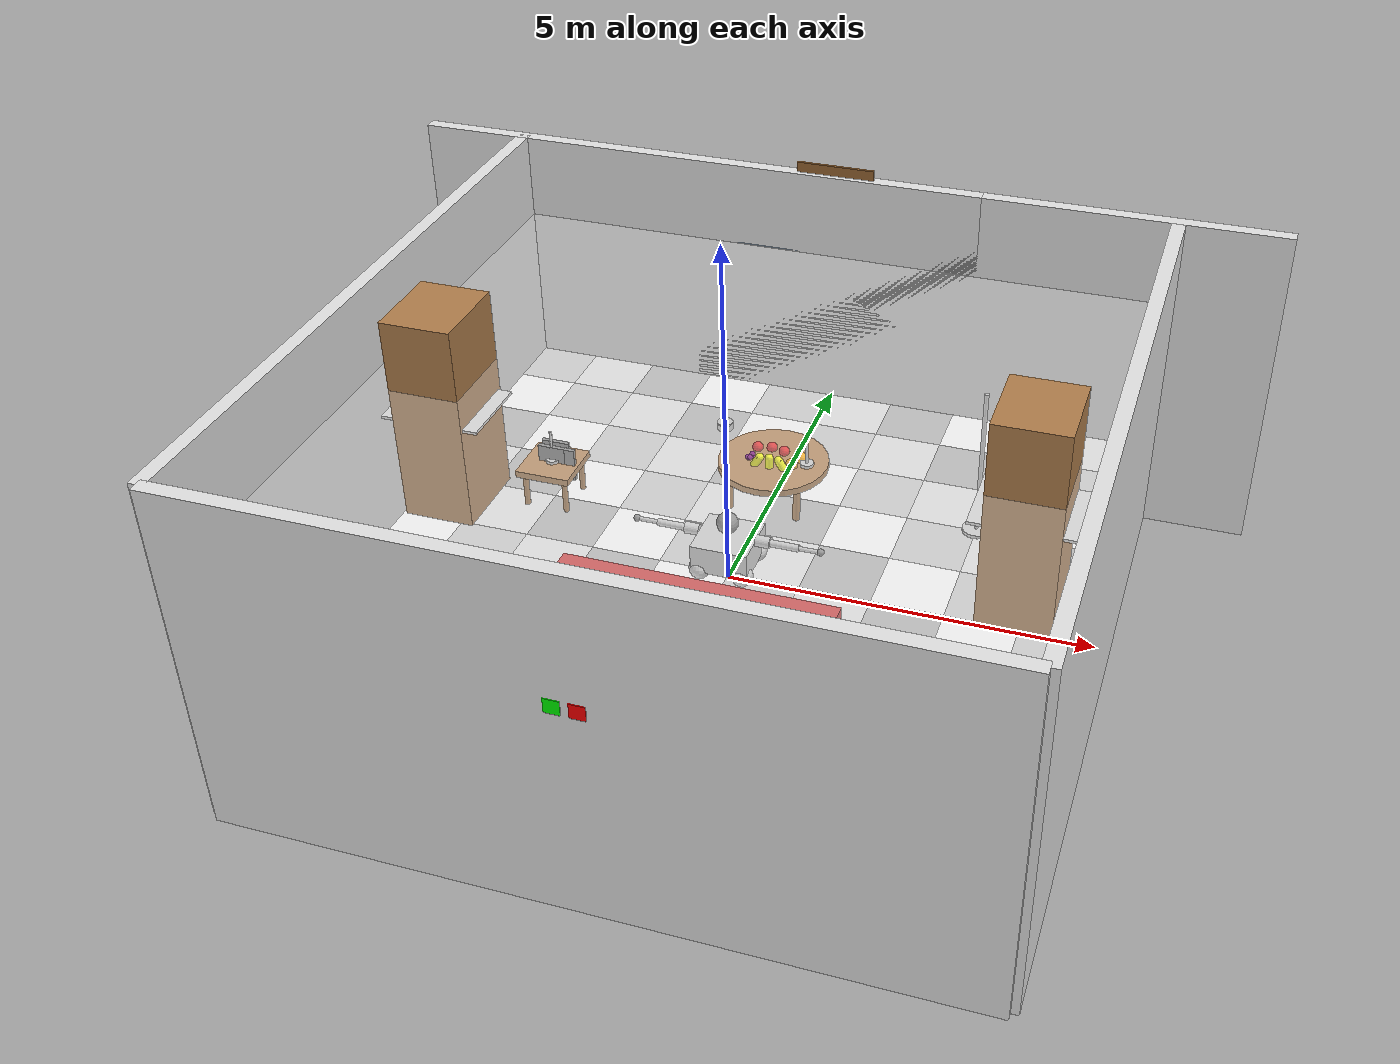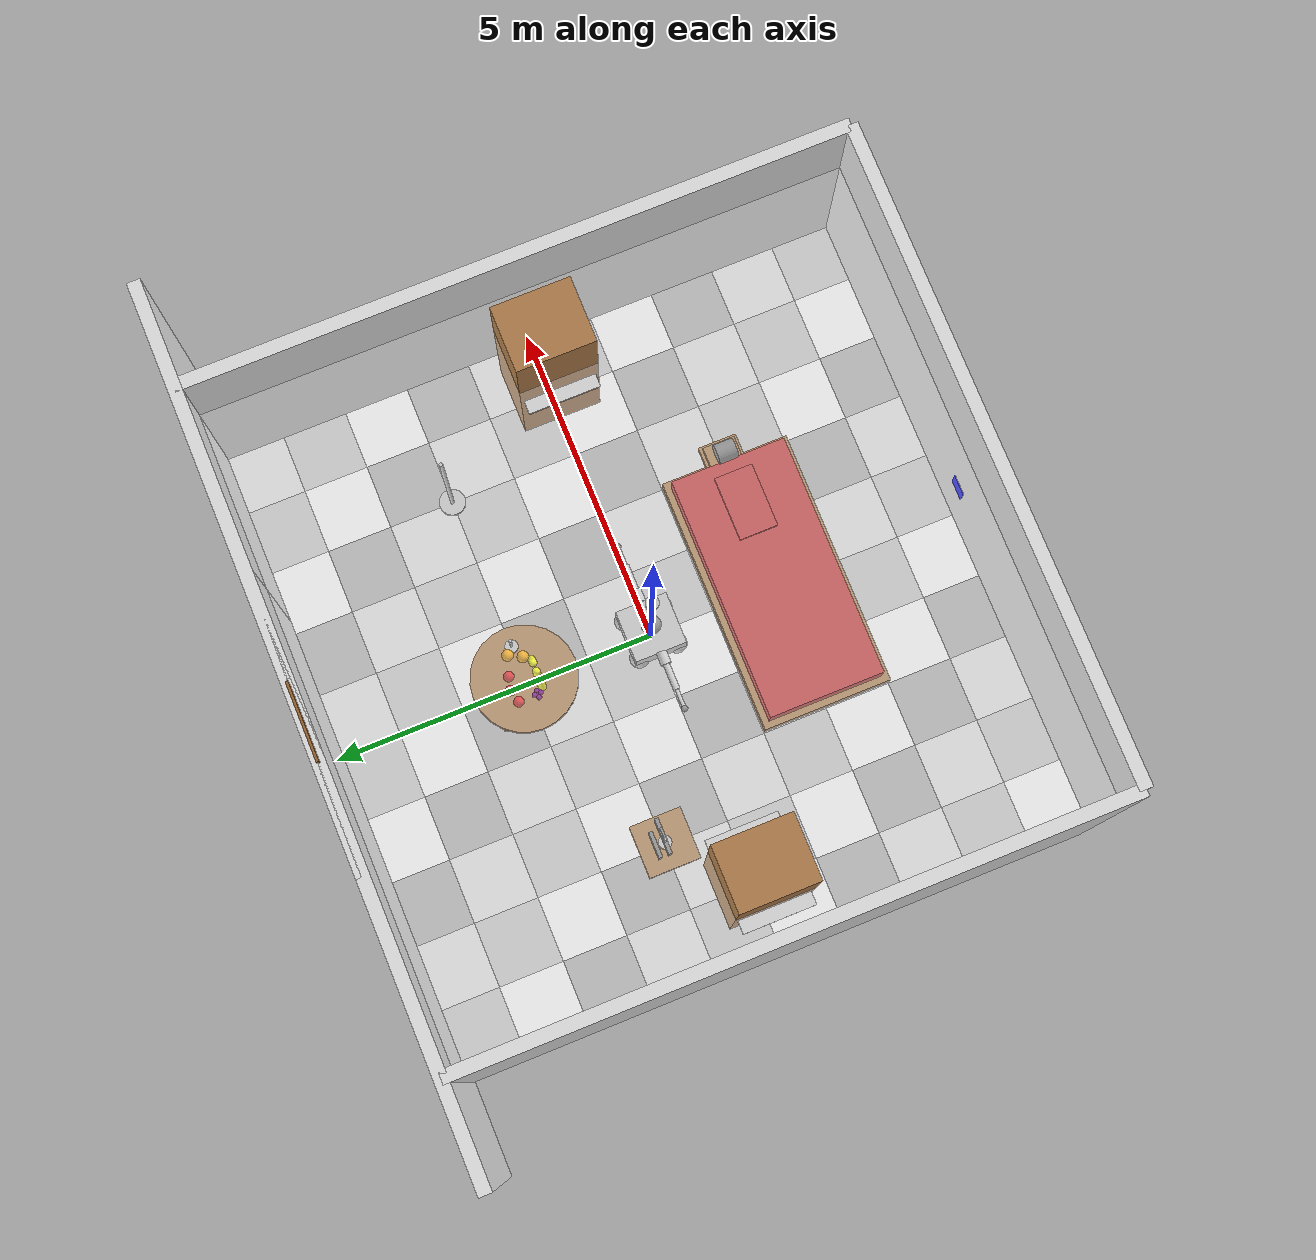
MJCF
<mujoco model="bedroom">
  <compiler angle="degree" inertiafromgeom="true"/>
  <option integrator="RK4" timestep="0.01"/>

  <asset>
    <material name="wall" rgba="0.9 0.9 0.9 1"/>
    <material name="floor_tile1" rgba="1 1 1 1"/> <!-- 白色 -->
    <material name="floor_tile2" rgba="0.8 0.8 0.8 1"/> <!-- 浅灰色 -->
    <material name="floor_tile3" rgba="0.9 0.9 0.9 1"/> <!-- 中灰色 -->
    <material name="floor_tile4" rgba="0.7 0.7 0.7 1"/> <!-- 深灰色 -->
    <material name="ceiling" rgba="0.95 0.95 0.95 1"/>
    <material name="wood" rgba="0.7 0.5 0.3 1"/>
    <material name="metal" rgba="0.8 0.8 0.8 1"/>
    <material name="fabric" rgba="0.8 0.2 0.2 1"/>
    <material name="plastic" rgba="0.5 0.5 0.5 1"/>
    <material name="window" rgba="0.3 0.6 0.9 0.3"/>
    <material name="light" rgba="1 1 0.9 0.8"/>
    <material name="wardrobe_door" rgba="0.85 0.85 0.85 1"/>
    <material name="wardrobe_inner" rgba="0.9 0.85 0.8 1"/>
    <material name="apple" rgba="0.9 0.1 0.1 1"/>
    <material name="banana" rgba="1 1 0 1"/>
    <material name="orange" rgba="1 0.65 0 1"/>
    <material name="grape" rgba="0.5 0 0.5 1"/>
    <material name="frame" rgba="0.6 0.4 0.2 1"/>
    <material name="picture" rgba="0.2 0.4 0.8 0.9"/>
    <material name="picture_box1" rgba="1 0 0 1"/>
    <material name="picture_box2" rgba="0 1 0 1"/>
    <material name="picture_box3" rgba="0 0 1 1"/>
    <material name="door" rgba="0.6 0.4 0.2 1"/>
  </asset>

  <worldbody>
    <!-- 相机视角 -->
    <camera name="main_camera" pos="5 5 3" fovy="60"/>

    <!-- 光照设置 -->
    <!-- 方向光（模拟太阳光） -->
    <light diffuse="1 1 1" pos="5 -5 5" dir="-1 1 -1"/>
    <!-- 点光源1（天花板灯） -->
    <light diffuse="1 1 0.9" pos="0 0 2.3"/>
    <!-- 点光源2（落地灯） -->
    <light diffuse="1 1 0.9" pos="3 2 1.9"/>
    <!-- 点光源3（小桌子台灯） -->
    <light diffuse="1 1 0.9" pos="-3 1 1.05"/>
    <!-- 点光源4（餐桌台灯） -->
    <light diffuse="1 1 0.9" pos="0.5 2 1.05"/>

    <!-- 地板：拼色方块地板砖 -->
    <!-- 创建10x10的地板砖网格，使用四种颜色的拼色图案 -->
    <!-- 第一行 -->
    <geom name="tile_0_0" type="box" size="0.5 0.5 0.05" pos="-4.5 -4.5 0" material="floor_tile1"/>
    <geom name="tile_1_0" type="box" size="0.5 0.5 0.05" pos="-3.5 -4.5 0" material="floor_tile2"/>
    <geom name="tile_2_0" type="box" size="0.5 0.5 0.05" pos="-2.5 -4.5 0" material="floor_tile3"/>
    <geom name="tile_3_0" type="box" size="0.5 0.5 0.05" pos="-1.5 -4.5 0" material="floor_tile4"/>
    <geom name="tile_4_0" type="box" size="0.5 0.5 0.05" pos="-0.5 -4.5 0" material="floor_tile1"/>
    <geom name="tile_5_0" type="box" size="0.5 0.5 0.05" pos="0.5 -4.5 0" material="floor_tile2"/>
    <geom name="tile_6_0" type="box" size="0.5 0.5 0.05" pos="1.5 -4.5 0" material="floor_tile3"/>
    <geom name="tile_7_0" type="box" size="0.5 0.5 0.05" pos="2.5 -4.5 0" material="floor_tile4"/>
    <geom name="tile_8_0" type="box" size="0.5 0.5 0.05" pos="3.5 -4.5 0" material="floor_tile1"/>
    <geom name="tile_9_0" type="box" size="0.5 0.5 0.05" pos="4.5 -4.5 0" material="floor_tile2"/>
    <!-- 第二行 -->
    <geom name="tile_0_1" type="box" size="0.5 0.5 0.05" pos="-4.5 -3.5 0" material="floor_tile2"/>
    <geom name="tile_1_1" type="box" size="0.5 0.5 0.05" pos="-3.5 -3.5 0" material="floor_tile3"/>
    <geom name="tile_2_1" type="box" size="0.5 0.5 0.05" pos="-2.5 -3.5 0" material="floor_tile4"/>
    <geom name="tile_3_1" type="box" size="0.5 0.5 0.05" pos="-1.5 -3.5 0" material="floor_tile1"/>
    <geom name="tile_4_1" type="box" size="0.5 0.5 0.05" pos="-0.5 -3.5 0" material="floor_tile2"/>
    <geom name="tile_5_1" type="box" size="0.5 0.5 0.05" pos="0.5 -3.5 0" material="floor_tile3"/>
    <geom name="tile_6_1" type="box" size="0.5 0.5 0.05" pos="1.5 -3.5 0" material="floor_tile4"/>
    <geom name="tile_7_1" type="box" size="0.5 0.5 0.05" pos="2.5 -3.5 0" material="floor_tile1"/>
    <geom name="tile_8_1" type="box" size="0.5 0.5 0.05" pos="3.5 -3.5 0" material="floor_tile2"/>
    <geom name="tile_9_1" type="box" size="0.5 0.5 0.05" pos="4.5 -3.5 0" material="floor_tile3"/>
    <!-- 第三行 -->
    <geom name="tile_0_2" type="box" size="0.5 0.5 0.05" pos="-4.5 -2.5 0" material="floor_tile3"/>
    <geom name="tile_1_2" type="box" size="0.5 0.5 0.05" pos="-3.5 -2.5 0" material="floor_tile4"/>
    <geom name="tile_2_2" type="box" size="0.5 0.5 0.05" pos="-2.5 -2.5 0" material="floor_tile1"/>
    <geom name="tile_3_2" type="box" size="0.5 0.5 0.05" pos="-1.5 -2.5 0" material="floor_tile2"/>
    <geom name="tile_4_2" type="box" size="0.5 0.5 0.05" pos="-0.5 -2.5 0" material="floor_tile3"/>
    <geom name="tile_5_2" type="box" size="0.5 0.5 0.05" pos="0.5 -2.5 0" material="floor_tile4"/>
    <geom name="tile_6_2" type="box" size="0.5 0.5 0.05" pos="1.5 -2.5 0" material="floor_tile1"/>
    <geom name="tile_7_2" type="box" size="0.5 0.5 0.05" pos="2.5 -2.5 0" material="floor_tile2"/>
    <geom name="tile_8_2" type="box" size="0.5 0.5 0.05" pos="3.5 -2.5 0" material="floor_tile3"/>
    <geom name="tile_9_2" type="box" size="0.5 0.5 0.05" pos="4.5 -2.5 0" material="floor_tile4"/>
    <!-- 第四行 -->
    <geom name="tile_0_3" type="box" size="0.5 0.5 0.05" pos="-4.5 -1.5 0" material="floor_tile4"/>
    <geom name="tile_1_3" type="box" size="0.5 0.5 0.05" pos="-3.5 -1.5 0" material="floor_tile1"/>
    <geom name="tile_2_3" type="box" size="0.5 0.5 0.05" pos="-2.5 -1.5 0" material="floor_tile2"/>
    <geom name="tile_3_3" type="box" size="0.5 0.5 0.05" pos="-1.5 -1.5 0" material="floor_tile3"/>
    <geom name="tile_4_3" type="box" size="0.5 0.5 0.05" pos="-0.5 -1.5 0" material="floor_tile4"/>
    <geom name="tile_5_3" type="box" size="0.5 0.5 0.05" pos="0.5 -1.5 0" material="floor_tile1"/>
    <geom name="tile_6_3" type="box" size="0.5 0.5 0.05" pos="1.5 -1.5 0" material="floor_tile2"/>
    <geom name="tile_7_3" type="box" size="0.5 0.5 0.05" pos="2.5 -1.5 0" material="floor_tile3"/>
    <geom name="tile_8_3" type="box" size="0.5 0.5 0.05" pos="3.5 -1.5 0" material="floor_tile4"/>
    <geom name="tile_9_3" type="box" size="0.5 0.5 0.05" pos="4.5 -1.5 0" material="floor_tile1"/>
    <!-- 第五行 -->
    <geom name="tile_0_4" type="box" size="0.5 0.5 0.05" pos="-4.5 -0.5 0" material="floor_tile1"/>
    <geom name="tile_1_4" type="box" size="0.5 0.5 0.05" pos="-3.5 -0.5 0" material="floor_tile2"/>
    <geom name="tile_2_4" type="box" size="0.5 0.5 0.05" pos="-2.5 -0.5 0" material="floor_tile3"/>
    <geom name="tile_3_4" type="box" size="0.5 0.5 0.05" pos="-1.5 -0.5 0" material="floor_tile4"/>
    <geom name="tile_4_4" type="box" size="0.5 0.5 0.05" pos="-0.5 -0.5 0" material="floor_tile1"/>
    <geom name="tile_5_4" type="box" size="0.5 0.5 0.05" pos="0.5 -0.5 0" material="floor_tile2"/>
    <geom name="tile_6_4" type="box" size="0.5 0.5 0.05" pos="1.5 -0.5 0" material="floor_tile3"/>
    <geom name="tile_7_4" type="box" size="0.5 0.5 0.05" pos="2.5 -0.5 0" material="floor_tile4"/>
    <geom name="tile_8_4" type="box" size="0.5 0.5 0.05" pos="3.5 -0.5 0" material="floor_tile1"/>
    <geom name="tile_9_4" type="box" size="0.5 0.5 0.05" pos="4.5 -0.5 0" material="floor_tile2"/>
    <!-- 第六行 -->
    <geom name="tile_0_5" type="box" size="0.5 0.5 0.05" pos="-4.5 0.5 0" material="floor_tile2"/>
    <geom name="tile_1_5" type="box" size="0.5 0.5 0.05" pos="-3.5 0.5 0" material="floor_tile3"/>
    <geom name="tile_2_5" type="box" size="0.5 0.5 0.05" pos="-2.5 0.5 0" material="floor_tile4"/>
    <geom name="tile_3_5" type="box" size="0.5 0.5 0.05" pos="-1.5 0.5 0" material="floor_tile1"/>
    <geom name="tile_4_5" type="box" size="0.5 0.5 0.05" pos="-0.5 0.5 0" material="floor_tile2"/>
    <geom name="tile_5_5" type="box" size="0.5 0.5 0.05" pos="0.5 0.5 0" material="floor_tile3"/>
    <geom name="tile_6_5" type="box" size="0.5 0.5 0.05" pos="1.5 0.5 0" material="floor_tile4"/>
    <geom name="tile_7_5" type="box" size="0.5 0.5 0.05" pos="2.5 0.5 0" material="floor_tile1"/>
    <geom name="tile_8_5" type="box" size="0.5 0.5 0.05" pos="3.5 0.5 0" material="floor_tile2"/>
    <geom name="tile_9_5" type="box" size="0.5 0.5 0.05" pos="4.5 0.5 0" material="floor_tile3"/>
    <!-- 第七行 -->
    <geom name="tile_0_6" type="box" size="0.5 0.5 0.05" pos="-4.5 1.5 0" material="floor_tile3"/>
    <geom name="tile_1_6" type="box" size="0.5 0.5 0.05" pos="-3.5 1.5 0" material="floor_tile4"/>
    <geom name="tile_2_6" type="box" size="0.5 0.5 0.05" pos="-2.5 1.5 0" material="floor_tile1"/>
    <geom name="tile_3_6" type="box" size="0.5 0.5 0.05" pos="-1.5 1.5 0" material="floor_tile2"/>
    <geom name="tile_4_6" type="box" size="0.5 0.5 0.05" pos="-0.5 1.5 0" material="floor_tile3"/>
    <geom name="tile_5_6" type="box" size="0.5 0.5 0.05" pos="0.5 1.5 0" material="floor_tile4"/>
    <geom name="tile_6_6" type="box" size="0.5 0.5 0.05" pos="1.5 1.5 0" material="floor_tile1"/>
    <geom name="tile_7_6" type="box" size="0.5 0.5 0.05" pos="2.5 1.5 0" material="floor_tile2"/>
    <geom name="tile_8_6" type="box" size="0.5 0.5 0.05" pos="3.5 1.5 0" material="floor_tile3"/>
    <geom name="tile_9_6" type="box" size="0.5 0.5 0.05" pos="4.5 1.5 0" material="floor_tile4"/>
    <!-- 第八行 -->
    <geom name="tile_0_7" type="box" size="0.5 0.5 0.05" pos="-4.5 2.5 0" material="floor_tile4"/>
    <geom name="tile_1_7" type="box" size="0.5 0.5 0.05" pos="-3.5 2.5 0" material="floor_tile1"/>
    <geom name="tile_2_7" type="box" size="0.5 0.5 0.05" pos="-2.5 2.5 0" material="floor_tile2"/>
    <geom name="tile_3_7" type="box" size="0.5 0.5 0.05" pos="-1.5 2.5 0" material="floor_tile3"/>
    <geom name="tile_4_7" type="box" size="0.5 0.5 0.05" pos="-0.5 2.5 0" material="floor_tile4"/>
    <geom name="tile_5_7" type="box" size="0.5 0.5 0.05" pos="0.5 2.5 0" material="floor_tile1"/>
    <geom name="tile_6_7" type="box" size="0.5 0.5 0.05" pos="1.5 2.5 0" material="floor_tile2"/>
    <geom name="tile_7_7" type="box" size="0.5 0.5 0.05" pos="2.5 2.5 0" material="floor_tile3"/>
    <geom name="tile_8_7" type="box" size="0.5 0.5 0.05" pos="3.5 2.5 0" material="floor_tile4"/>
    <geom name="tile_9_7" type="box" size="0.5 0.5 0.05" pos="4.5 2.5 0" material="floor_tile1"/>
    <!-- 第九行 -->
    <geom name="tile_0_8" type="box" size="0.5 0.5 0.05" pos="-4.5 3.5 0" material="floor_tile1"/>
    <geom name="tile_1_8" type="box" size="0.5 0.5 0.05" pos="-3.5 3.5 0" material="floor_tile2"/>
    <geom name="tile_2_8" type="box" size="0.5 0.5 0.05" pos="-2.5 3.5 0" material="floor_tile3"/>
    <geom name="tile_3_8" type="box" size="0.5 0.5 0.05" pos="-1.5 3.5 0" material="floor_tile4"/>
    <geom name="tile_4_8" type="box" size="0.5 0.5 0.05" pos="-0.5 3.5 0" material="floor_tile1"/>
    <geom name="tile_5_8" type="box" size="0.5 0.5 0.05" pos="0.5 3.5 0" material="floor_tile2"/>
    <geom name="tile_6_8" type="box" size="0.5 0.5 0.05" pos="1.5 3.5 0" material="floor_tile3"/>
    <geom name="tile_7_8" type="box" size="0.5 0.5 0.05" pos="2.5 3.5 0" material="floor_tile4"/>
    <geom name="tile_8_8" type="box" size="0.5 0.5 0.05" pos="3.5 3.5 0" material="floor_tile1"/>
    <geom name="tile_9_8" type="box" size="0.5 0.5 0.05" pos="4.5 3.5 0" material="floor_tile2"/>
    <!-- 第十行 -->
    <geom name="tile_0_9" type="box" size="0.5 0.5 0.05" pos="-4.5 4.5 0" material="floor_tile2"/>
    <geom name="tile_1_9" type="box" size="0.5 0.5 0.05" pos="-3.5 4.5 0" material="floor_tile3"/>
    <geom name="tile_2_9" type="box" size="0.5 0.5 0.05" pos="-2.5 4.5 0" material="floor_tile4"/>
    <geom name="tile_3_9" type="box" size="0.5 0.5 0.05" pos="-1.5 4.5 0" material="floor_tile1"/>
    <geom name="tile_4_9" type="box" size="0.5 0.5 0.05" pos="-0.5 4.5 0" material="floor_tile2"/>
    <geom name="tile_5_9" type="box" size="0.5 0.5 0.05" pos="0.5 4.5 0" material="floor_tile3"/>
    <geom name="tile_6_9" type="box" size="0.5 0.5 0.05" pos="1.5 4.5 0" material="floor_tile4"/>
    <geom name="tile_7_9" type="box" size="0.5 0.5 0.05" pos="2.5 4.5 0" material="floor_tile1"/>
    <geom name="tile_8_9" type="box" size="0.5 0.5 0.05" pos="3.5 4.5 0" material="floor_tile2"/>
    <geom name="tile_9_9" type="box" size="0.5 0.5 0.05" pos="4.5 4.5 0" material="floor_tile3"/>

    <!-- 墙壁 -->
    <geom name="wall_back" type="box" size="5 0.1 2.5" pos="0 -5 1.25" material="wall"/>
    <!-- 正面墙壁（分成左右两部分，中间留出门的空间） -->
    <geom name="wall_front_left" type="box" size="4.4 0.1 2.5" pos="-2.2 5 1.25" material="wall"/>
    <geom name="wall_front_right" type="box" size="4.4 0.1 2.5" pos="2.2 5 1.25" material="wall"/>
    <geom name="wall_left" type="box" size="0.1 5 2.5" pos="-5 0 1.25" material="wall"/>
    <geom name="wall_right" type="box" size="0.1 5 2.5" pos="5 0 1.25" material="wall"/>

    <!-- 门：带铰链的可开关门 -->
    <body name="door" pos="0 5 1">
      <!-- 门铰链 -->
      <joint name="door_hinge" type="hinge" axis="0 0 1" pos="-0.6 0 0" range="-120 0"/>
      <!-- 门本身 -->
      <geom name="door_panel" type="box" size="0.58 0.02 1.9" pos="0 0 1" material="door"/>
    </body>

    <!-- 窗户 -->
    <geom name="window_front" type="box" size="1.5 0.1 1" pos="0 5 1.5" material="window"/>

    <!-- 相框：背面墙壁 -->
    <body name="picture_frame" pos="0 -5 2">
      <!-- 相框外框 -->
      <geom name="frame_outer" type="box" size="0.6 0.03 0.8" pos="0 0 0.01" material="frame"/>
      <!-- 相框内框 -->
      <geom name="frame_inner" type="box" size="0.55 0.01 0.75" pos="0 0 0.02" material="picture"/>
      <!-- 彩色方框图片 -->
      <geom name="picture_box_red" type="box" size="0.15 0.005 0.15" pos="-0.2 0 0.03" material="picture_box1"/>
      <geom name="picture_box_green" type="box" size="0.15 0.005 0.15" pos="0.2 0 0.03" material="picture_box2"/>
      <geom name="picture_box_blue" type="box" size="0.15 0.005 0.15" pos="0 0.3 0.03" material="picture_box3"/>
      <geom name="picture_box_red2" type="box" size="0.1 0.005 0.1" pos="0.15 -0.2 0.03" material="picture_box1"/>
      <geom name="picture_box_green2" type="box" size="0.1 0.005 0.1" pos="-0.15 -0.2 0.03" material="picture_box2"/>
    </body>

    <!-- 天花板 -->
    <geom name="ceiling" type="plane" size="5 5 0.1" pos="0 0 2.5" material="ceiling" euler="180 0 0"/>

    <body name="bed" pos="0 -2 0">
      <!-- 床架 -->
      <geom name="bed_frame" type="box" size="2 1 0.1" pos="0 0 0.3" material="wood"/>
      <geom name="bed_leg1" type="cylinder" size="0.05 0.3" pos="-1.5 -0.8 0.15" material="wood"/>
      <geom name="bed_leg2" type="cylinder" size="0.05 0.3" pos="1.5 -0.8 0.15" material="wood"/>
      <geom name="bed_leg3" type="cylinder" size="0.05 0.3" pos="-1.5 0.8 0.15" material="wood"/>
      <geom name="bed_leg4" type="cylinder" size="0.05 0.3" pos="1.5 0.8 0.15" material="wood"/>

      <!-- 床垫 -->
      <geom name="mattress" type="box" size="1.9 0.9 0.2" pos="0 0 0.55" material="fabric"/>

      <!-- 枕头 -->
      <geom name="pillow" type="box" size="0.5 0.3 0.1" pos="1.2 0 0.7" material="fabric"/>
    </body>

    <!-- 床头柜和台灯 -->
    <body name="nightstand" pos="2 -2 0">
      <geom name="nightstand_top" type="box" size="0.3 0.3 0.05" pos="0 0 0.4" material="wood"/>
      <geom name="nightstand_body" type="box" size="0.25 0.25 0.35" pos="0 0 0.2" material="wood"/>

      <!-- 台灯 -->
      <body name="lamp" pos="0 0 0.4">
        <geom name="lamp_base" type="cylinder" size="0.15 0.05" pos="0 0 0.05" material="metal"/>
        <geom name="lamp_pole" type="cylinder" size="0.02 0.3" pos="0 0 0.25" material="metal"/>
        <geom name="lamp_shade" type="cylinder" size="0.15 0.15" pos="0 0 0.5" material="plastic" euler="90 0 0"/>
      </body>

      <!-- 书籍 -->
      <geom name="book1" type="box" size="0.15 0.02 0.2" pos="-0.1 0.1 0.45" material="plastic"/>
      <geom name="book2" type="box" size="0.15 0.02 0.2" pos="-0.1 0 0.48" material="plastic"/>
      <geom name="book3" type="box" size="0.15 0.02 0.2" pos="-0.1 -0.1 0.51" material="plastic"/>
    </body>

    <!-- 小桌子和画册 -->
    <body name="table" pos="-3 1 0">
      <geom name="table_top" type="box" size="0.4 0.4 0.05" pos="0 0 0.6" material="wood"/>
      <geom name="table_leg1" type="cylinder" size="0.04 0.3" pos="-0.3 -0.3 0.3" material="wood"/>
      <geom name="table_leg2" type="cylinder" size="0.04 0.3" pos="0.3 -0.3 0.3" material="wood"/>
      <geom name="table_leg3" type="cylinder" size="0.04 0.3" pos="-0.3 0.3 0.3" material="wood"/>
      <geom name="table_leg4" type="cylinder" size="0.04 0.3" pos="0.3 0.3 0.3" material="wood"/>

      <!-- 台灯 -->
      <body name="table_lamp" pos="0 0 0.6">
        <geom name="table_lamp_base" type="cylinder" size="0.1 0.05" pos="0 0 0.05" material="metal"/>
        <geom name="table_lamp_pole" type="cylinder" size="0.02 0.3" pos="0 0 0.25" material="metal"/>
        <geom name="table_lamp_shade" type="cylinder" size="0.12 0.12" pos="0 0 0.45" material="light" euler="90 0 0"/>
      </body>

      <!-- 画册 -->
      <geom name="album1" type="box" size="0.2 0.03 0.25" pos="0 0 0.65" material="plastic"/>
      <geom name="album2" type="box" size="0.2 0.03 0.25" pos="0 0.15 0.65" material="plastic"/>
      <geom name="album3" type="box" size="0.2 0.03 0.25" pos="0.15 0 0.65" material="plastic"/>
    </body>

    <!-- 落地灯 -->
    <body name="floor_lamp" pos="3 2 0">
      <geom name="floor_lamp_base" type="cylinder" size="0.2 0.05" pos="0 0 0.05" material="metal"/>
      <geom name="floor_lamp_pole" type="cylinder" size="0.03 1.5" pos="0 0 0.8" material="metal"/>
      <geom name="floor_lamp_shade" type="cylinder" size="0.25 0.25" pos="0 0 1.9" material="light" euler="90 0 0"/>
    </body>

    <!-- 天花板吊灯 -->
    <body name="ceiling_light" pos="0 0 2.5">
      <geom name="ceiling_light_base" type="cylinder" size="0.1 0.05" pos="0 0 -0.05" material="metal"/>
      <geom name="ceiling_light_chain" type="cylinder" size="0.01 0.2" pos="0 0 -0.2" material="metal"/>
      <geom name="ceiling_light_shade" type="cylinder" size="0.2 0.15" pos="0 0 -0.4" material="light" euler="90 0 0"/>
    </body>

    <!-- 衣柜1：左侧墙壁 -->
    <body name="wardrobe1" pos="-4 0 1">
      <geom name="wardrobe1_body" type="box" size="0.5 0.6 1.5" pos="0 0 1" material="wood"/>
      <geom name="wardrobe1_door1" type="box" size="0.45 0.55 0.02" pos="-0.25 0 1" material="wardrobe_door"/>
      <geom name="wardrobe1_door2" type="box" size="0.45 0.55 0.02" pos="0.25 0 1" material="wardrobe_door"/>
      <geom name="wardrobe1_shelf1" type="box" size="0.4 0.5 0.02" pos="0 0 1.5" material="wardrobe_inner"/>
      <geom name="wardrobe1_shelf2" type="box" size="0.4 0.5 0.02" pos="0 0 0.8" material="wardrobe_inner"/>
    </body>

    <!-- 衣柜2：右侧墙壁 -->
    <body name="wardrobe2" pos="4 0 1">
      <geom name="wardrobe2_body" type="box" size="0.5 0.6 1.5" pos="0 0 1" material="wood"/>
      <geom name="wardrobe2_door1" type="box" size="0.45 0.55 0.02" pos="-0.25 0 1" material="wardrobe_door"/>
      <geom name="wardrobe2_door2" type="box" size="0.45 0.55 0.02" pos="0.25 0 1" material="wardrobe_door"/>
      <geom name="wardrobe2_shelf1" type="box" size="0.4 0.5 0.02" pos="0 0 1.5" material="wardrobe_inner"/>
      <geom name="wardrobe2_shelf2" type="box" size="0.4 0.5 0.02" pos="0 0 0.8" material="wardrobe_inner"/>
    </body>

    <!-- 新桌子：中央偏前 -->
    <body name="dining_table" pos="0 2 0">
      <geom name="dining_table_top" type="cylinder" size="0.8 0.05" pos="0 0 0.6" material="wood"/>
      <geom name="dining_table_leg1" type="cylinder" size="0.05 0.3" pos="-0.5 0.5 0.3" material="wood"/>
      <geom name="dining_table_leg2" type="cylinder" size="0.05 0.3" pos="0.5 0.5 0.3" material="wood"/>
      <geom name="dining_table_leg3" type="cylinder" size="0.05 0.3" pos="-0.5 -0.5 0.3" material="wood"/>
      <geom name="dining_table_leg4" type="cylinder" size="0.05 0.3" pos="0.5 -0.5 0.3" material="wood"/>

      <!-- 台灯 -->
      <body name="dining_table_lamp" pos="0.5 0 0.6">
        <geom name="dining_lamp_base" type="cylinder" size="0.1 0.05" pos="0 0 0.05" material="metal"/>
        <geom name="dining_lamp_pole" type="cylinder" size="0.02 0.3" pos="0 0 0.25" material="metal"/>
        <geom name="dining_lamp_shade" type="cylinder" size="0.12 0.12" pos="0 0 0.45" material="light" euler="90 0 0"/>
      </body>

      <!-- 水果 -->
      <!-- 苹果 -->
      <geom name="apple1" type="sphere" size="0.08" pos="-0.3 0.2 0.68" material="apple"/>
      <geom name="apple2" type="sphere" size="0.08" pos="-0.1 0.25 0.68" material="apple"/>
      <geom name="apple3" type="sphere" size="0.08" pos="0.1 0.2 0.68" material="apple"/>

      <!-- 香蕉 -->
      <geom name="banana1" type="capsule" size="0.06 0.12" pos="-0.2 -0.2 0.68" material="banana" euler="0 30 0"/>
      <geom name="banana2" type="capsule" size="0.06 0.12" pos="0 -0.2 0.68" material="banana" euler="0 0 0"/>
      <geom name="banana3" type="capsule" size="0.06 0.12" pos="0.2 -0.2 0.68" material="banana" euler="0 -30 0"/>

      <!-- 橙子 -->
      <geom name="orange1" type="sphere" size="0.09" pos="0.3 -0.1 0.68" material="orange"/>
      <geom name="orange2" type="sphere" size="0.09" pos="0.4 0.1 0.68" material="orange"/>

      <!-- 葡萄 -->
      <geom name="grape1" type="sphere" size="0.04" pos="-0.35 -0.1 0.68" material="grape"/>
      <geom name="grape2" type="sphere" size="0.04" pos="-0.3 -0.05 0.72" material="grape"/>
      <geom name="grape3" type="sphere" size="0.04" pos="-0.25 -0.1 0.68" material="grape"/>
      <geom name="grape4" type="sphere" size="0.04" pos="-0.3 -0.15 0.72" material="grape"/>
    </body>

    <!-- 机器人 -->
    <body name="robot_base" pos="0 0 0">
      <!-- 移动关节 -->
      <joint name="robot_x_joint" type="slide" axis="1 0 0"/>
      <joint name="robot_y_joint" type="slide" axis="0 1 0"/>
      <joint name="robot_rot_joint" type="hinge" axis="0 0 1"/>

      <!-- 机器人主体 -->
      <body name="robot" pos="0 0 0.5">
        <!-- 底盘 -->
        <geom name="chassis" type="box" size="0.4 0.4 0.2" pos="0 0 0" material="metal"/>

        <!-- 球形轮子 -->
        <geom name="wheel_front_left" type="sphere" size="0.15" pos="-0.3 -0.3 -0.2" material="metal"/>
        <geom name="wheel_front_right" type="sphere" size="0.15" pos="0.3 -0.3 -0.2" material="metal"/>
        <geom name="wheel_back_left" type="sphere" size="0.15" pos="-0.3 0.3 -0.2" material="metal"/>
        <geom name="wheel_back_right" type="sphere" size="0.15" pos="0.3 0.3 -0.2" material="metal"/>

        <!-- 头部 -->
        <body name="head" pos="0 0 0.4">
          <geom name="head_geom" type="sphere" size="0.15" material="plastic"/>
        </body>

        <!-- 左臂 -->
        <body name="left_shoulder" pos="-0.4 0 0.2">
          <joint name="left_shoulder_joint" type="ball"/>
          <geom name="left_shoulder_geom" type="cylinder" size="0.08 0.1" pos="-0.1 0 0" material="metal" euler="0 90 0"/>

          <body name="left_elbow" pos="-0.2 0 0">
            <joint name="left_elbow_joint" type="hinge" axis="0 1 0" range="-90 90"/>
            <geom name="left_upper_arm" type="cylinder" size="0.05 0.2" pos="-0.2 0 0" material="metal" euler="0 90 0"/>

            <body name="left_wrist" pos="-0.4 0 0">
              <joint name="left_wrist_joint" type="hinge" axis="0 1 0" range="-90 90"/>
              <geom name="left_lower_arm" type="cylinder" size="0.03 0.15" pos="-0.15 0 0" material="metal" euler="0 90 0"/>
              <geom name="left_hand" type="sphere" size="0.05" pos="-0.3 0 0" material="plastic"/>
            </body>
          </body>
        </body>

        <!-- 右臂 -->
        <body name="right_shoulder" pos="0.4 0 0.2">
          <joint name="right_shoulder_joint" type="ball"/>
          <geom name="right_shoulder_geom" type="cylinder" size="0.08 0.1" pos="0.1 0 0" material="metal" euler="0 90 0"/>

          <body name="right_elbow" pos="0.2 0 0">
            <joint name="right_elbow_joint" type="hinge" axis="0 1 0" range="-90 90"/>
            <geom name="right_upper_arm" type="cylinder" size="0.05 0.2" pos="0.2 0 0" material="metal" euler="0 90 0"/>

            <body name="right_wrist" pos="0.4 0 0">
              <joint name="right_wrist_joint" type="hinge" axis="0 1 0" range="-90 90"/>
              <geom name="right_lower_arm" type="cylinder" size="0.03 0.15" pos="0.15 0 0" material="metal" euler="0 90 0"/>
              <geom name="right_hand" type="sphere" size="0.05" pos="0.3 0 0" material="plastic"/>
            </body>
          </body>
        </body>
      </body>
    </body>
  </worldbody>

  <actuator>
    <!-- 机器人手臂关节控制器 -->
    <motor name="left_shoulder_motor" joint="left_shoulder_joint" gear="5"/>
    <motor name="left_elbow_motor" joint="left_elbow_joint" gear="5"/>
    <motor name="left_wrist_motor" joint="left_wrist_joint" gear="5"/>

    <motor name="right_shoulder_motor" joint="right_shoulder_joint" gear="5"/>
    <motor name="right_elbow_motor" joint="right_elbow_joint" gear="5"/>
    <motor name="right_wrist_motor" joint="right_wrist_joint" gear="5"/>

    <!-- 机器人行走控制器 -->
    <motor name="robot_x_motor" joint="robot_x_joint" gear="100" ctrllimited="true" ctrlrange="-1 1"/>
    <motor name="robot_y_motor" joint="robot_y_joint" gear="100" ctrllimited="true" ctrlrange="-1 1"/>
    <motor name="robot_rot_motor" joint="robot_rot_joint" gear="100" ctrllimited="true" ctrlrange="-1 1"/>

    <!-- 门控制器 -->
    <motor name="door_motor" joint="door_hinge" gear="50" ctrllimited="true" ctrlrange="-1 1"/>
  </actuator>
</mujoco>
